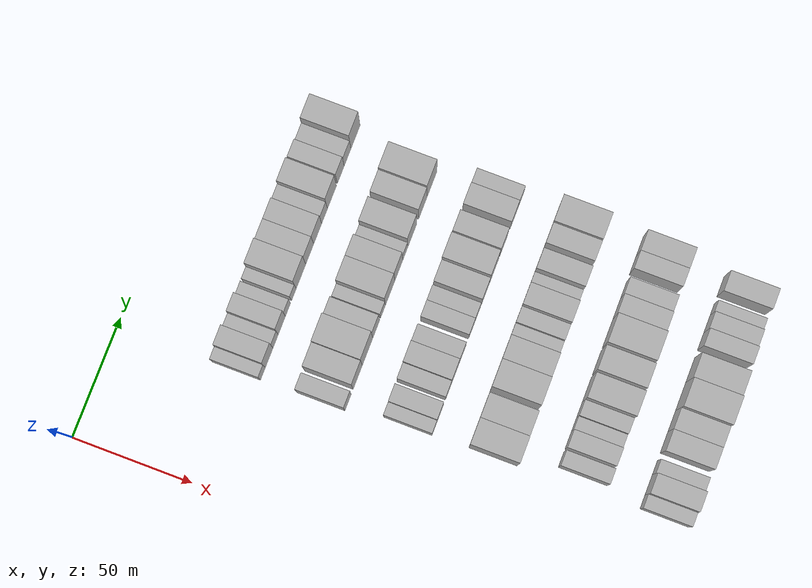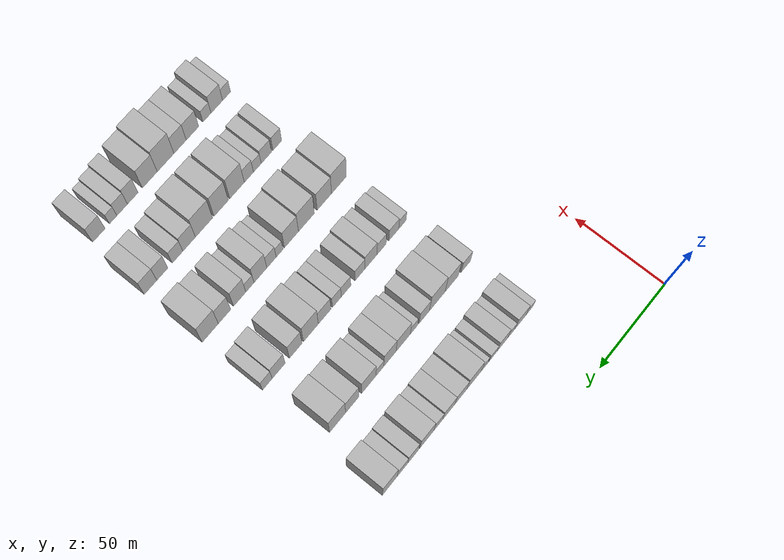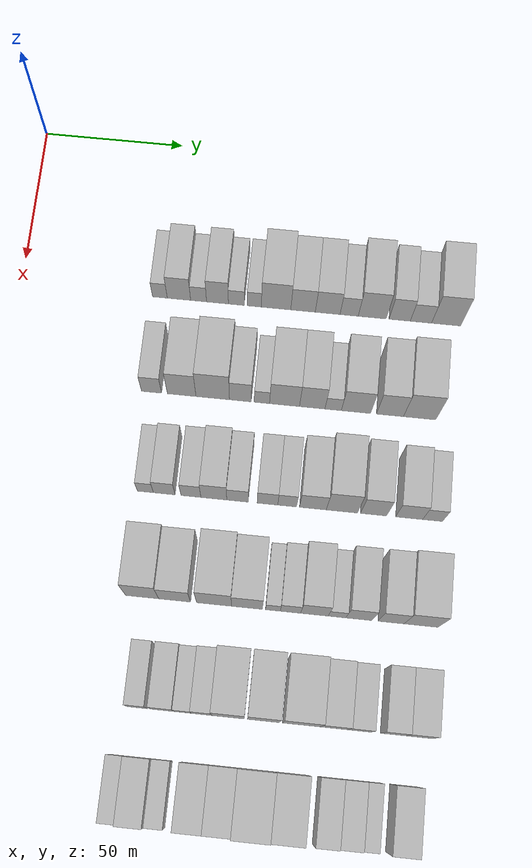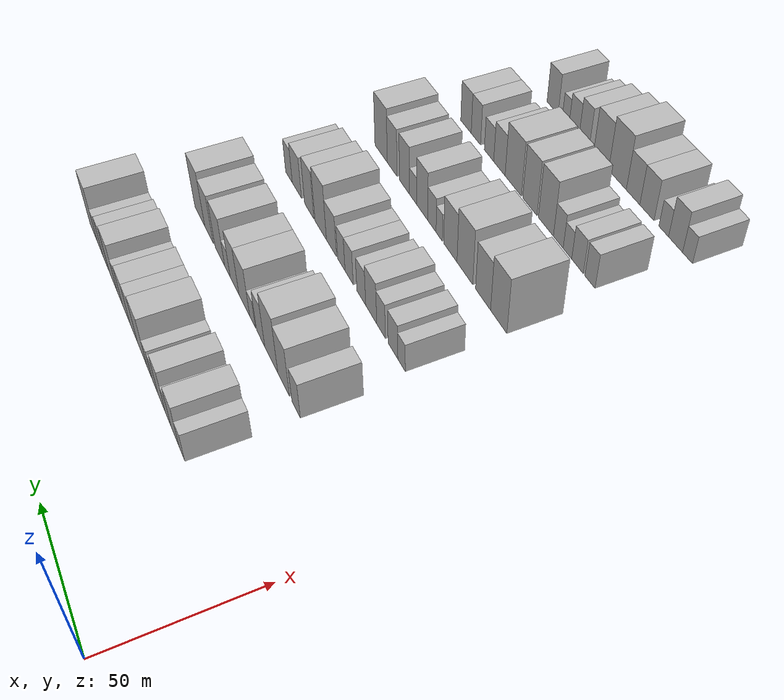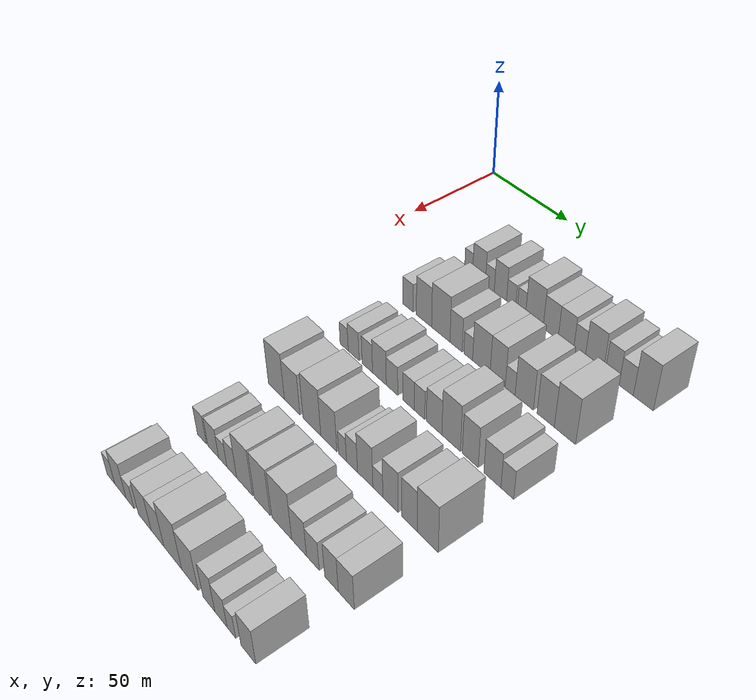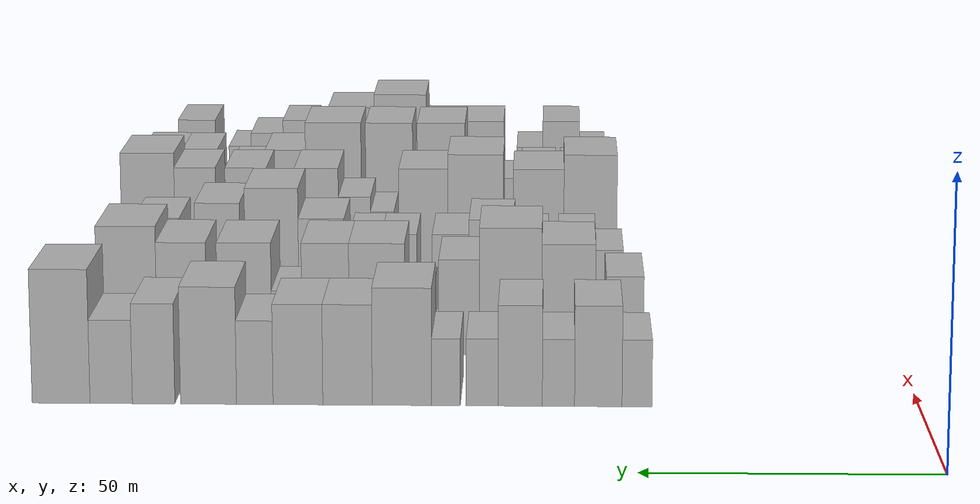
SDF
<sdf version="1.6">
 <world name="default">
  <model name="building_67">
   <static>1</static>
   <pose>50.0000 49.1198 0 0.000000 0.000000 0.000000</pose>
   <link name="link">
    <pose>0 0 6.00 0 0 0</pose>
    <collision name="collision"><geometry><box><size>20.0000 5.2100 12.0000</size></box></geometry></collision>
    <visual name="visual">
     <cast_shadows>0</cast_shadows>
     <geometry><box><size>20.0000 5.2100 12.0000</size></box></geometry>
     <material>
      <script>
       <uri>model://HANNAS_wall/materials/scripts</uri>
       <uri>model://HANNAS_wall/materials/textures</uri>
       <name>vrc/HANNAS_wall</name>
      </script>
     </material>
    </visual>
   </link>
  </model>
  <model name="building_68">
   <static>1</static>
   <pose>50.0000 55.8494 0 0.000000 0.000000 0.000000</pose>
   <link name="link">
    <pose>0 0 9.00 0 0 0</pose>
    <collision name="collision"><geometry><box><size>20.0000 8.2492 18.0000</size></box></geometry></collision>
    <visual name="visual">
     <cast_shadows>0</cast_shadows>
     <geometry><box><size>20.0000 8.2492 18.0000</size></box></geometry>
     <material>
      <script>
       <uri>model://HANNAS_wall/materials/scripts</uri>
       <uri>model://HANNAS_wall/materials/textures</uri>
       <name>vrc/HANNAS_wall</name>
      </script>
     </material>
    </visual>
   </link>
  </model>
  <model name="building_69">
   <static>1</static>
   <pose>50.0000 62.7805 0 0.000000 0.000000 0.000000</pose>
   <link name="link">
    <pose>0 0 6.00 0 0 0</pose>
    <collision name="collision"><geometry><box><size>20.0000 5.6130 12.0000</size></box></geometry></collision>
    <visual name="visual">
     <cast_shadows>0</cast_shadows>
     <geometry><box><size>20.0000 5.6130 12.0000</size></box></geometry>
     <material>
      <script>
       <uri>model://HANNAS_wall/materials/scripts</uri>
       <uri>model://HANNAS_wall/materials/textures</uri>
       <name>vrc/HANNAS_wall</name>
      </script>
     </material>
    </visual>
   </link>
  </model>
  <model name="building_70">
   <static>1</static>
   <pose>50.0000 69.4365 0 0.000000 0.000000 0.000000</pose>
   <link name="link">
    <pose>0 0 9.00 0 0 0</pose>
    <collision name="collision"><geometry><box><size>20.0000 7.6991 18.0000</size></box></geometry></collision>
    <visual name="visual">
     <cast_shadows>0</cast_shadows>
     <geometry><box><size>20.0000 7.6991 18.0000</size></box></geometry>
     <material>
      <script>
       <uri>model://HANNAS_wall/materials/scripts</uri>
       <uri>model://HANNAS_wall/materials/textures</uri>
       <name>vrc/HANNAS_wall</name>
      </script>
     </material>
    </visual>
   </link>
  </model>
  <model name="building_71">
   <static>1</static>
   <pose>50.0000 76.0715 0 0.000000 0.000000 0.000000</pose>
   <link name="link">
    <pose>0 0 6.00 0 0 0</pose>
    <collision name="collision"><geometry><box><size>20.0000 5.5709 12.0000</size></box></geometry></collision>
    <visual name="visual">
     <cast_shadows>0</cast_shadows>
     <geometry><box><size>20.0000 5.5709 12.0000</size></box></geometry>
     <material>
      <script>
       <uri>model://HANNAS_wall/materials/scripts</uri>
       <uri>model://HANNAS_wall/materials/textures</uri>
       <name>vrc/HANNAS_wall</name>
      </script>
     </material>
    </visual>
   </link>
  </model>
  <model name="building_72">
   <static>1</static>
   <pose>50.0000 82.3597 0 0.000000 0.000000 0.000000</pose>
   <link name="link">
    <pose>0 0 6.00 0 0 0</pose>
    <collision name="collision"><geometry><box><size>20.0000 5.0054 12.0000</size></box></geometry></collision>
    <visual name="visual">
     <cast_shadows>0</cast_shadows>
     <geometry><box><size>20.0000 5.0054 12.0000</size></box></geometry>
     <material>
      <script>
       <uri>model://HANNAS_wall/materials/scripts</uri>
       <uri>model://HANNAS_wall/materials/textures</uri>
       <name>vrc/HANNAS_wall</name>
      </script>
     </material>
    </visual>
   </link>
  </model>
  <model name="building_73">
   <static>1</static>
   <pose>50.0000 90.0445 0 0.000000 0.000000 0.000000</pose>
   <link name="link">
    <pose>0 0 10.50 0 0 0</pose>
    <collision name="collision"><geometry><box><size>20.0000 10.3643 21.0000</size></box></geometry></collision>
    <visual name="visual">
     <cast_shadows>0</cast_shadows>
     <geometry><box><size>20.0000 10.3643 21.0000</size></box></geometry>
     <material>
      <script>
       <uri>model://HANNAS_wall/materials/scripts</uri>
       <uri>model://HANNAS_wall/materials/textures</uri>
       <name>vrc/HANNAS_wall</name>
      </script>
     </material>
    </visual>
   </link>
  </model>
  <model name="building_74">
   <static>1</static>
   <pose>50.0000 99.5334 0 0.000000 0.000000 0.000000</pose>
   <link name="link">
    <pose>0 0 9.00 0 0 0</pose>
    <collision name="collision"><geometry><box><size>20.0000 8.6134 18.0000</size></box></geometry></collision>
    <visual name="visual">
     <cast_shadows>0</cast_shadows>
     <geometry><box><size>20.0000 8.6134 18.0000</size></box></geometry>
     <material>
      <script>
       <uri>model://HANNAS_wall/materials/scripts</uri>
       <uri>model://HANNAS_wall/materials/textures</uri>
       <name>vrc/HANNAS_wall</name>
      </script>
     </material>
    </visual>
   </link>
  </model>
  <model name="building_75">
   <static>1</static>
   <pose>50.0000 108.1881 0 0.000000 0.000000 0.000000</pose>
   <link name="link">
    <pose>0 0 9.00 0 0 0</pose>
    <collision name="collision"><geometry><box><size>20.0000 8.6960 18.0000</size></box></geometry></collision>
    <visual name="visual">
     <cast_shadows>0</cast_shadows>
     <geometry><box><size>20.0000 8.6960 18.0000</size></box></geometry>
     <material>
      <script>
       <uri>model://HANNAS_wall/materials/scripts</uri>
       <uri>model://HANNAS_wall/materials/textures</uri>
       <name>vrc/HANNAS_wall</name>
      </script>
     </material>
    </visual>
   </link>
  </model>
  <model name="building_76">
   <static>1</static>
   <pose>50.0000 115.7218 0 0.000000 0.000000 0.000000</pose>
   <link name="link">
    <pose>0 0 7.50 0 0 0</pose>
    <collision name="collision"><geometry><box><size>20.0000 6.3713 15.0000</size></box></geometry></collision>
    <visual name="visual">
     <cast_shadows>0</cast_shadows>
     <geometry><box><size>20.0000 6.3713 15.0000</size></box></geometry>
     <material>
      <script>
       <uri>model://HANNAS_wall/materials/scripts</uri>
       <uri>model://HANNAS_wall/materials/textures</uri>
       <name>vrc/HANNAS_wall</name>
      </script>
     </material>
    </visual>
   </link>
  </model>
  <model name="building_77">
   <static>1</static>
   <pose>50.0000 123.8082 0 0.000000 0.000000 0.000000</pose>
   <link name="link">
    <pose>0 0 10.50 0 0 0</pose>
    <collision name="collision"><geometry><box><size>20.0000 9.8015 21.0000</size></box></geometry></collision>
    <visual name="visual">
     <cast_shadows>0</cast_shadows>
     <geometry><box><size>20.0000 9.8015 21.0000</size></box></geometry>
     <material>
      <script>
       <uri>model://HANNAS_wall/materials/scripts</uri>
       <uri>model://HANNAS_wall/materials/textures</uri>
       <name>vrc/HANNAS_wall</name>
      </script>
     </material>
    </visual>
   </link>
  </model>
  <model name="building_78">
   <static>1</static>
   <pose>50.0000 133.4193 0 0.000000 0.000000 0.000000</pose>
   <link name="link">
    <pose>0 0 9.00 0 0 0</pose>
    <collision name="collision"><geometry><box><size>20.0000 7.4208 18.0000</size></box></geometry></collision>
    <visual name="visual">
     <cast_shadows>0</cast_shadows>
     <geometry><box><size>20.0000 7.4208 18.0000</size></box></geometry>
     <material>
      <script>
       <uri>model://HANNAS_wall/materials/scripts</uri>
       <uri>model://HANNAS_wall/materials/textures</uri>
       <name>vrc/HANNAS_wall</name>
      </script>
     </material>
    </visual>
   </link>
  </model>
  <model name="building_79">
   <static>1</static>
   <pose>50.0000 140.8421 0 0.000000 0.000000 0.000000</pose>
   <link name="link">
    <pose>0 0 7.50 0 0 0</pose>
    <collision name="collision"><geometry><box><size>20.0000 7.4248 15.0000</size></box></geometry></collision>
    <visual name="visual">
     <cast_shadows>0</cast_shadows>
     <geometry><box><size>20.0000 7.4248 15.0000</size></box></geometry>
     <material>
      <script>
       <uri>model://HANNAS_wall/materials/scripts</uri>
       <uri>model://HANNAS_wall/materials/textures</uri>
       <name>vrc/HANNAS_wall</name>
      </script>
     </material>
    </visual>
   </link>
  </model>
  <model name="building_80">
   <static>1</static>
   <pose>50.0000 149.6236 0 0.000000 0.000000 0.000000</pose>
   <link name="link">
    <pose>0 0 12.00 0 0 0</pose>
    <collision name="collision"><geometry><box><size>20.0000 10.1382 24.0000</size></box></geometry></collision>
    <visual name="visual">
     <cast_shadows>0</cast_shadows>
     <geometry><box><size>20.0000 10.1382 24.0000</size></box></geometry>
     <material>
      <script>
       <uri>model://HANNAS_wall/materials/scripts</uri>
       <uri>model://HANNAS_wall/materials/textures</uri>
       <name>vrc/HANNAS_wall</name>
      </script>
     </material>
    </visual>
   </link>
  </model>
  <model name="building_198">
   <static>1</static>
   <pose>85.0000 50.5022 0 0.000000 0.000000 0.000000</pose>
   <link name="link">
    <pose>0 0 7.50 0 0 0</pose>
    <collision name="collision"><geometry><box><size>20.0000 6.9142 15.0000</size></box></geometry></collision>
    <visual name="visual">
     <cast_shadows>0</cast_shadows>
     <geometry><box><size>20.0000 6.9142 15.0000</size></box></geometry>
     <material>
      <script>
       <uri>model://HANNAS_wall/materials/scripts</uri>
       <uri>model://HANNAS_wall/materials/textures</uri>
       <name>vrc/HANNAS_wall</name>
      </script>
     </material>
    </visual>
   </link>
  </model>
  <model name="building_199">
   <static>1</static>
   <pose>85.0000 60.8864 0 0.000000 0.000000 0.000000</pose>
   <link name="link">
    <pose>0 0 10.50 0 0 0</pose>
    <collision name="collision"><geometry><box><size>20.0000 9.8542 21.0000</size></box></geometry></collision>
    <visual name="visual">
     <cast_shadows>0</cast_shadows>
     <geometry><box><size>20.0000 9.8542 21.0000</size></box></geometry>
     <material>
      <script>
       <uri>model://HANNAS_wall/materials/scripts</uri>
       <uri>model://HANNAS_wall/materials/textures</uri>
       <name>vrc/HANNAS_wall</name>
      </script>
     </material>
    </visual>
   </link>
  </model>
  <model name="building_200">
   <static>1</static>
   <pose>85.0000 71.5769 0 0.000000 0.000000 0.000000</pose>
   <link name="link">
    <pose>0 0 12.00 0 0 0</pose>
    <collision name="collision"><geometry><box><size>20.0000 11.5269 24.0000</size></box></geometry></collision>
    <visual name="visual">
     <cast_shadows>0</cast_shadows>
     <geometry><box><size>20.0000 11.5269 24.0000</size></box></geometry>
     <material>
      <script>
       <uri>model://HANNAS_wall/materials/scripts</uri>
       <uri>model://HANNAS_wall/materials/textures</uri>
       <name>vrc/HANNAS_wall</name>
      </script>
     </material>
    </visual>
   </link>
  </model>
  <model name="building_201">
   <static>1</static>
   <pose>85.0000 81.0850 0 0.000000 0.000000 0.000000</pose>
   <link name="link">
    <pose>0 0 9.00 0 0 0</pose>
    <collision name="collision"><geometry><box><size>20.0000 7.4894 18.0000</size></box></geometry></collision>
    <visual name="visual">
     <cast_shadows>0</cast_shadows>
     <geometry><box><size>20.0000 7.4894 18.0000</size></box></geometry>
     <material>
      <script>
       <uri>model://HANNAS_wall/materials/scripts</uri>
       <uri>model://HANNAS_wall/materials/textures</uri>
       <name>vrc/HANNAS_wall</name>
      </script>
     </material>
    </visual>
   </link>
  </model>
  <model name="building_202">
   <static>1</static>
   <pose>85.0000 88.4668 0 0.000000 0.000000 0.000000</pose>
   <link name="link">
    <pose>0 0 6.00 0 0 0</pose>
    <collision name="collision"><geometry><box><size>20.0000 5.2743 12.0000</size></box></geometry></collision>
    <visual name="visual">
     <cast_shadows>0</cast_shadows>
     <geometry><box><size>20.0000 5.2743 12.0000</size></box></geometry>
     <material>
      <script>
       <uri>model://HANNAS_wall/materials/scripts</uri>
       <uri>model://HANNAS_wall/materials/textures</uri>
       <name>vrc/HANNAS_wall</name>
      </script>
     </material>
    </visual>
   </link>
  </model>
  <model name="building_203">
   <static>1</static>
   <pose>85.0000 96.2432 0 0.000000 0.000000 0.000000</pose>
   <link name="link">
    <pose>0 0 10.50 0 0 0</pose>
    <collision name="collision"><geometry><box><size>20.0000 10.2783 21.0000</size></box></geometry></collision>
    <visual name="visual">
     <cast_shadows>0</cast_shadows>
     <geometry><box><size>20.0000 10.2783 21.0000</size></box></geometry>
     <material>
      <script>
       <uri>model://HANNAS_wall/materials/scripts</uri>
       <uri>model://HANNAS_wall/materials/textures</uri>
       <name>vrc/HANNAS_wall</name>
      </script>
     </material>
    </visual>
   </link>
  </model>
  <model name="building_204">
   <static>1</static>
   <pose>85.0000 105.7461 0 0.000000 0.000000 0.000000</pose>
   <link name="link">
    <pose>0 0 10.50 0 0 0</pose>
    <collision name="collision"><geometry><box><size>20.0000 8.7275 21.0000</size></box></geometry></collision>
    <visual name="visual">
     <cast_shadows>0</cast_shadows>
     <geometry><box><size>20.0000 8.7275 21.0000</size></box></geometry>
     <material>
      <script>
       <uri>model://HANNAS_wall/materials/scripts</uri>
       <uri>model://HANNAS_wall/materials/textures</uri>
       <name>vrc/HANNAS_wall</name>
      </script>
     </material>
    </visual>
   </link>
  </model>
  <model name="building_205">
   <static>1</static>
   <pose>85.0000 112.9119 0 0.000000 0.000000 0.000000</pose>
   <link name="link">
    <pose>0 0 6.00 0 0 0</pose>
    <collision name="collision"><geometry><box><size>20.0000 5.6042 12.0000</size></box></geometry></collision>
    <visual name="visual">
     <cast_shadows>0</cast_shadows>
     <geometry><box><size>20.0000 5.6042 12.0000</size></box></geometry>
     <material>
      <script>
       <uri>model://HANNAS_wall/materials/scripts</uri>
       <uri>model://HANNAS_wall/materials/textures</uri>
       <name>vrc/HANNAS_wall</name>
      </script>
     </material>
    </visual>
   </link>
  </model>
  <model name="building_206">
   <static>1</static>
   <pose>85.0000 120.7235 0 0.000000 0.000000 0.000000</pose>
   <link name="link">
    <pose>0 0 10.50 0 0 0</pose>
    <collision name="collision"><geometry><box><size>20.0000 10.0190 21.0000</size></box></geometry></collision>
    <visual name="visual">
     <cast_shadows>0</cast_shadows>
     <geometry><box><size>20.0000 10.0190 21.0000</size></box></geometry>
     <material>
      <script>
       <uri>model://HANNAS_wall/materials/scripts</uri>
       <uri>model://HANNAS_wall/materials/textures</uri>
       <name>vrc/HANNAS_wall</name>
      </script>
     </material>
    </visual>
   </link>
  </model>
  <model name="building_207">
   <static>1</static>
   <pose>85.0000 132.3406 0 0.000000 0.000000 0.000000</pose>
   <link name="link">
    <pose>0 0 10.50 0 0 0</pose>
    <collision name="collision"><geometry><box><size>20.0000 9.2150 21.0000</size></box></geometry></collision>
    <visual name="visual">
     <cast_shadows>0</cast_shadows>
     <geometry><box><size>20.0000 9.2150 21.0000</size></box></geometry>
     <material>
      <script>
       <uri>model://HANNAS_wall/materials/scripts</uri>
       <uri>model://HANNAS_wall/materials/textures</uri>
       <name>vrc/HANNAS_wall</name>
      </script>
     </material>
    </visual>
   </link>
  </model>
  <model name="building_208">
   <static>1</static>
   <pose>85.0000 142.4739 0 0.000000 0.000000 0.000000</pose>
   <link name="link">
    <pose>0 0 12.00 0 0 0</pose>
    <collision name="collision"><geometry><box><size>20.0000 11.0516 24.0000</size></box></geometry></collision>
    <visual name="visual">
     <cast_shadows>0</cast_shadows>
     <geometry><box><size>20.0000 11.0516 24.0000</size></box></geometry>
     <material>
      <script>
       <uri>model://HANNAS_wall/materials/scripts</uri>
       <uri>model://HANNAS_wall/materials/textures</uri>
       <name>vrc/HANNAS_wall</name>
      </script>
     </material>
    </visual>
   </link>
  </model>
  <model name="building_327">
   <static>1</static>
   <pose>120.0000 52.7888 0 0.000000 0.000000 0.000000</pose>
   <link name="link">
    <pose>0 0 6.00 0 0 0</pose>
    <collision name="collision"><geometry><box><size>20.0000 5.4136 12.0000</size></box></geometry></collision>
    <visual name="visual">
     <cast_shadows>0</cast_shadows>
     <geometry><box><size>20.0000 5.4136 12.0000</size></box></geometry>
     <material>
      <script>
       <uri>model://HANNAS_wall/materials/scripts</uri>
       <uri>model://HANNAS_wall/materials/textures</uri>
       <name>vrc/HANNAS_wall</name>
      </script>
     </material>
    </visual>
   </link>
  </model>
  <model name="building_328">
   <static>1</static>
   <pose>120.0000 59.1271 0 0.000000 0.000000 0.000000</pose>
   <link name="link">
    <pose>0 0 7.50 0 0 0</pose>
    <collision name="collision"><geometry><box><size>20.0000 7.2629 15.0000</size></box></geometry></collision>
    <visual name="visual">
     <cast_shadows>0</cast_shadows>
     <geometry><box><size>20.0000 7.2629 15.0000</size></box></geometry>
     <material>
      <script>
       <uri>model://HANNAS_wall/materials/scripts</uri>
       <uri>model://HANNAS_wall/materials/textures</uri>
       <name>vrc/HANNAS_wall</name>
      </script>
     </material>
    </visual>
   </link>
  </model>
  <model name="building_329">
   <static>1</static>
   <pose>120.0000 68.0916 0 0.000000 0.000000 0.000000</pose>
   <link name="link">
    <pose>0 0 7.50 0 0 0</pose>
    <collision name="collision"><geometry><box><size>20.0000 6.6662 15.0000</size></box></geometry></collision>
    <visual name="visual">
     <cast_shadows>0</cast_shadows>
     <geometry><box><size>20.0000 6.6662 15.0000</size></box></geometry>
     <material>
      <script>
       <uri>model://HANNAS_wall/materials/scripts</uri>
       <uri>model://HANNAS_wall/materials/textures</uri>
       <name>vrc/HANNAS_wall</name>
      </script>
     </material>
    </visual>
   </link>
  </model>
  <model name="building_330">
   <static>1</static>
   <pose>120.0000 75.7740 0 0.000000 0.000000 0.000000</pose>
   <link name="link">
    <pose>0 0 9.00 0 0 0</pose>
    <collision name="collision"><geometry><box><size>20.0000 8.6986 18.0000</size></box></geometry></collision>
    <visual name="visual">
     <cast_shadows>0</cast_shadows>
     <geometry><box><size>20.0000 8.6986 18.0000</size></box></geometry>
     <material>
      <script>
       <uri>model://HANNAS_wall/materials/scripts</uri>
       <uri>model://HANNAS_wall/materials/textures</uri>
       <name>vrc/HANNAS_wall</name>
      </script>
     </material>
    </visual>
   </link>
  </model>
  <model name="building_331">
   <static>1</static>
   <pose>120.0000 83.7094 0 0.000000 0.000000 0.000000</pose>
   <link name="link">
    <pose>0 0 7.50 0 0 0</pose>
    <collision name="collision"><geometry><box><size>20.0000 7.1723 15.0000</size></box></geometry></collision>
    <visual name="visual">
     <cast_shadows>0</cast_shadows>
     <geometry><box><size>20.0000 7.1723 15.0000</size></box></geometry>
     <material>
      <script>
       <uri>model://HANNAS_wall/materials/scripts</uri>
       <uri>model://HANNAS_wall/materials/textures</uri>
       <name>vrc/HANNAS_wall</name>
      </script>
     </material>
    </visual>
   </link>
  </model>
  <model name="building_332">
   <static>1</static>
   <pose>120.0000 93.7433 0 0.000000 0.000000 0.000000</pose>
   <link name="link">
    <pose>0 0 7.50 0 0 0</pose>
    <collision name="collision"><geometry><box><size>20.0000 6.8956 15.0000</size></box></geometry></collision>
    <visual name="visual">
     <cast_shadows>0</cast_shadows>
     <geometry><box><size>20.0000 6.8956 15.0000</size></box></geometry>
     <material>
      <script>
       <uri>model://HANNAS_wall/materials/scripts</uri>
       <uri>model://HANNAS_wall/materials/textures</uri>
       <name>vrc/HANNAS_wall</name>
      </script>
     </material>
    </visual>
   </link>
  </model>
  <model name="building_333">
   <static>1</static>
   <pose>120.0000 100.3325 0 0.000000 0.000000 0.000000</pose>
   <link name="link">
    <pose>0 0 7.50 0 0 0</pose>
    <collision name="collision"><geometry><box><size>20.0000 6.2827 15.0000</size></box></geometry></collision>
    <visual name="visual">
     <cast_shadows>0</cast_shadows>
     <geometry><box><size>20.0000 6.2827 15.0000</size></box></geometry>
     <material>
      <script>
       <uri>model://HANNAS_wall/materials/scripts</uri>
       <uri>model://HANNAS_wall/materials/textures</uri>
       <name>vrc/HANNAS_wall</name>
      </script>
     </material>
    </visual>
   </link>
  </model>
  <model name="building_334">
   <static>1</static>
   <pose>120.0000 108.9419 0 0.000000 0.000000 0.000000</pose>
   <link name="link">
    <pose>0 0 9.00 0 0 0</pose>
    <collision name="collision"><geometry><box><size>20.0000 8.9361 18.0000</size></box></geometry></collision>
    <visual name="visual">
     <cast_shadows>0</cast_shadows>
     <geometry><box><size>20.0000 8.9361 18.0000</size></box></geometry>
     <material>
      <script>
       <uri>model://HANNAS_wall/materials/scripts</uri>
       <uri>model://HANNAS_wall/materials/textures</uri>
       <name>vrc/HANNAS_wall</name>
      </script>
     </material>
    </visual>
   </link>
  </model>
  <model name="building_335">
   <static>1</static>
   <pose>120.0000 118.6176 0 0.000000 0.000000 0.000000</pose>
   <link name="link">
    <pose>0 0 12.00 0 0 0</pose>
    <collision name="collision"><geometry><box><size>20.0000 10.4153 24.0000</size></box></geometry></collision>
    <visual name="visual">
     <cast_shadows>0</cast_shadows>
     <geometry><box><size>20.0000 10.4153 24.0000</size></box></geometry>
     <material>
      <script>
       <uri>model://HANNAS_wall/materials/scripts</uri>
       <uri>model://HANNAS_wall/materials/textures</uri>
       <name>vrc/HANNAS_wall</name>
      </script>
     </material>
    </visual>
   </link>
  </model>
  <model name="building_336">
   <static>1</static>
   <pose>120.0000 129.1924 0 0.000000 0.000000 0.000000</pose>
   <link name="link">
    <pose>0 0 10.50 0 0 0</pose>
    <collision name="collision"><geometry><box><size>20.0000 8.7344 21.0000</size></box></geometry></collision>
    <visual name="visual">
     <cast_shadows>0</cast_shadows>
     <geometry><box><size>20.0000 8.7344 21.0000</size></box></geometry>
     <material>
      <script>
       <uri>model://HANNAS_wall/materials/scripts</uri>
       <uri>model://HANNAS_wall/materials/textures</uri>
       <name>vrc/HANNAS_wall</name>
      </script>
     </material>
    </visual>
   </link>
  </model>
  <model name="building_337">
   <static>1</static>
   <pose>120.0000 141.0520 0 0.000000 0.000000 0.000000</pose>
   <link name="link">
    <pose>0 0 9.00 0 0 0</pose>
    <collision name="collision"><geometry><box><size>20.0000 8.9848 18.0000</size></box></geometry></collision>
    <visual name="visual">
     <cast_shadows>0</cast_shadows>
     <geometry><box><size>20.0000 8.9848 18.0000</size></box></geometry>
     <material>
      <script>
       <uri>model://HANNAS_wall/materials/scripts</uri>
       <uri>model://HANNAS_wall/materials/textures</uri>
       <name>vrc/HANNAS_wall</name>
      </script>
     </material>
    </visual>
   </link>
  </model>
  <model name="building_338">
   <static>1</static>
   <pose>120.0000 148.8465 0 0.000000 0.000000 0.000000</pose>
   <link name="link">
    <pose>0 0 7.50 0 0 0</pose>
    <collision name="collision"><geometry><box><size>20.0000 6.6041 15.0000</size></box></geometry></collision>
    <visual name="visual">
     <cast_shadows>0</cast_shadows>
     <geometry><box><size>20.0000 6.6041 15.0000</size></box></geometry>
     <material>
      <script>
       <uri>model://HANNAS_wall/materials/scripts</uri>
       <uri>model://HANNAS_wall/materials/textures</uri>
       <name>vrc/HANNAS_wall</name>
      </script>
     </material>
    </visual>
   </link>
  </model>
  <model name="building_452">
   <static>1</static>
   <pose>155.0000 56.1237 0 0.000000 0.000000 0.000000</pose>
   <link name="link">
    <pose>0 0 12.00 0 0 0</pose>
    <collision name="collision"><geometry><box><size>20.0000 10.8956 24.0000</size></box></geometry></collision>
    <visual name="visual">
     <cast_shadows>0</cast_shadows>
     <geometry><box><size>20.0000 10.8956 24.0000</size></box></geometry>
     <material>
      <script>
       <uri>model://HANNAS_wall/materials/scripts</uri>
       <uri>model://HANNAS_wall/materials/textures</uri>
       <name>vrc/HANNAS_wall</name>
      </script>
     </material>
    </visual>
   </link>
  </model>
  <model name="building_453">
   <static>1</static>
   <pose>155.0000 66.7776 0 0.000000 0.000000 0.000000</pose>
   <link name="link">
    <pose>0 0 10.50 0 0 0</pose>
    <collision name="collision"><geometry><box><size>20.0000 10.4123 21.0000</size></box></geometry></collision>
    <visual name="visual">
     <cast_shadows>0</cast_shadows>
     <geometry><box><size>20.0000 10.4123 21.0000</size></box></geometry>
     <material>
      <script>
       <uri>model://HANNAS_wall/materials/scripts</uri>
       <uri>model://HANNAS_wall/materials/textures</uri>
       <name>vrc/HANNAS_wall</name>
      </script>
     </material>
    </visual>
   </link>
  </model>
  <model name="building_454">
   <static>1</static>
   <pose>155.0000 79.6913 0 0.000000 0.000000 0.000000</pose>
   <link name="link">
    <pose>0 0 12.00 0 0 0</pose>
    <collision name="collision"><geometry><box><size>20.0000 11.4151 24.0000</size></box></geometry></collision>
    <visual name="visual">
     <cast_shadows>0</cast_shadows>
     <geometry><box><size>20.0000 11.4151 24.0000</size></box></geometry>
     <material>
      <script>
       <uri>model://HANNAS_wall/materials/scripts</uri>
       <uri>model://HANNAS_wall/materials/textures</uri>
       <name>vrc/HANNAS_wall</name>
      </script>
     </material>
    </visual>
   </link>
  </model>
  <model name="building_455">
   <static>1</static>
   <pose>155.0000 90.4249 0 0.000000 0.000000 0.000000</pose>
   <link name="link">
    <pose>0 0 10.50 0 0 0</pose>
    <collision name="collision"><geometry><box><size>20.0000 10.0520 21.0000</size></box></geometry></collision>
    <visual name="visual">
     <cast_shadows>0</cast_shadows>
     <geometry><box><size>20.0000 10.0520 21.0000</size></box></geometry>
     <material>
      <script>
       <uri>model://HANNAS_wall/materials/scripts</uri>
       <uri>model://HANNAS_wall/materials/textures</uri>
       <name>vrc/HANNAS_wall</name>
      </script>
     </material>
    </visual>
   </link>
  </model>
  <model name="building_456">
   <static>1</static>
   <pose>155.0000 98.8574 0 0.000000 0.000000 0.000000</pose>
   <link name="link">
    <pose>0 0 6.00 0 0 0</pose>
    <collision name="collision"><geometry><box><size>20.0000 4.8131 12.0000</size></box></geometry></collision>
    <visual name="visual">
     <cast_shadows>0</cast_shadows>
     <geometry><box><size>20.0000 4.8131 12.0000</size></box></geometry>
     <material>
      <script>
       <uri>model://HANNAS_wall/materials/scripts</uri>
       <uri>model://HANNAS_wall/materials/textures</uri>
       <name>vrc/HANNAS_wall</name>
      </script>
     </material>
    </visual>
   </link>
  </model>
  <model name="building_457">
   <static>1</static>
   <pose>155.0000 104.5736 0 0.000000 0.000000 0.000000</pose>
   <link name="link">
    <pose>0 0 7.50 0 0 0</pose>
    <collision name="collision"><geometry><box><size>20.0000 6.6192 15.0000</size></box></geometry></collision>
    <visual name="visual">
     <cast_shadows>0</cast_shadows>
     <geometry><box><size>20.0000 6.6192 15.0000</size></box></geometry>
     <material>
      <script>
       <uri>model://HANNAS_wall/materials/scripts</uri>
       <uri>model://HANNAS_wall/materials/textures</uri>
       <name>vrc/HANNAS_wall</name>
      </script>
     </material>
    </visual>
   </link>
  </model>
  <model name="building_458">
   <static>1</static>
   <pose>155.0000 112.3823 0 0.000000 0.000000 0.000000</pose>
   <link name="link">
    <pose>0 0 10.50 0 0 0</pose>
    <collision name="collision"><geometry><box><size>20.0000 8.9981 21.0000</size></box></geometry></collision>
    <visual name="visual">
     <cast_shadows>0</cast_shadows>
     <geometry><box><size>20.0000 8.9981 21.0000</size></box></geometry>
     <material>
      <script>
       <uri>model://HANNAS_wall/materials/scripts</uri>
       <uri>model://HANNAS_wall/materials/textures</uri>
       <name>vrc/HANNAS_wall</name>
      </script>
     </material>
    </visual>
   </link>
  </model>
  <model name="building_459">
   <static>1</static>
   <pose>155.0000 119.7401 0 0.000000 0.000000 0.000000</pose>
   <link name="link">
    <pose>0 0 6.00 0 0 0</pose>
    <collision name="collision"><geometry><box><size>20.0000 5.7175 12.0000</size></box></geometry></collision>
    <visual name="visual">
     <cast_shadows>0</cast_shadows>
     <geometry><box><size>20.0000 5.7175 12.0000</size></box></geometry>
     <material>
      <script>
       <uri>model://HANNAS_wall/materials/scripts</uri>
       <uri>model://HANNAS_wall/materials/textures</uri>
       <name>vrc/HANNAS_wall</name>
      </script>
     </material>
    </visual>
   </link>
  </model>
  <model name="building_460">
   <static>1</static>
   <pose>155.0000 126.8466 0 0.000000 0.000000 0.000000</pose>
   <link name="link">
    <pose>0 0 10.50 0 0 0</pose>
    <collision name="collision"><geometry><box><size>20.0000 8.4956 21.0000</size></box></geometry></collision>
    <visual name="visual">
     <cast_shadows>0</cast_shadows>
     <geometry><box><size>20.0000 8.4956 21.0000</size></box></geometry>
     <material>
      <script>
       <uri>model://HANNAS_wall/materials/scripts</uri>
       <uri>model://HANNAS_wall/materials/textures</uri>
       <name>vrc/HANNAS_wall</name>
      </script>
     </material>
    </visual>
   </link>
  </model>
  <model name="building_461">
   <static>1</static>
   <pose>155.0000 137.3286 0 0.000000 0.000000 0.000000</pose>
   <link name="link">
    <pose>0 0 10.50 0 0 0</pose>
    <collision name="collision"><geometry><box><size>20.0000 8.4682 21.0000</size></box></geometry></collision>
    <visual name="visual">
     <cast_shadows>0</cast_shadows>
     <geometry><box><size>20.0000 8.4682 21.0000</size></box></geometry>
     <material>
      <script>
       <uri>model://HANNAS_wall/materials/scripts</uri>
       <uri>model://HANNAS_wall/materials/textures</uri>
       <name>vrc/HANNAS_wall</name>
      </script>
     </material>
    </visual>
   </link>
  </model>
  <model name="building_462">
   <static>1</static>
   <pose>155.0000 147.0739 0 0.000000 0.000000 0.000000</pose>
   <link name="link">
    <pose>0 0 12.00 0 0 0</pose>
    <collision name="collision"><geometry><box><size>20.0000 11.0223 24.0000</size></box></geometry></collision>
    <visual name="visual">
     <cast_shadows>0</cast_shadows>
     <geometry><box><size>20.0000 11.0223 24.0000</size></box></geometry>
     <material>
      <script>
       <uri>model://HANNAS_wall/materials/scripts</uri>
       <uri>model://HANNAS_wall/materials/textures</uri>
       <name>vrc/HANNAS_wall</name>
      </script>
     </material>
    </visual>
   </link>
  </model>
  <model name="building_581">
   <static>1</static>
   <pose>190.0000 59.0482 0 0.000000 0.000000 0.000000</pose>
   <link name="link">
    <pose>0 0 7.50 0 0 0</pose>
    <collision name="collision"><geometry><box><size>20.0000 6.3664 15.0000</size></box></geometry></collision>
    <visual name="visual">
     <cast_shadows>0</cast_shadows>
     <geometry><box><size>20.0000 6.3664 15.0000</size></box></geometry>
     <material>
      <script>
       <uri>model://HANNAS_wall/materials/scripts</uri>
       <uri>model://HANNAS_wall/materials/textures</uri>
       <name>vrc/HANNAS_wall</name>
      </script>
     </material>
    </visual>
   </link>
  </model>
  <model name="building_582">
   <static>1</static>
   <pose>190.0000 66.9518 0 0.000000 0.000000 0.000000</pose>
   <link name="link">
    <pose>0 0 7.50 0 0 0</pose>
    <collision name="collision"><geometry><box><size>20.0000 7.4409 15.0000</size></box></geometry></collision>
    <visual name="visual">
     <cast_shadows>0</cast_shadows>
     <geometry><box><size>20.0000 7.4409 15.0000</size></box></geometry>
     <material>
      <script>
       <uri>model://HANNAS_wall/materials/scripts</uri>
       <uri>model://HANNAS_wall/materials/textures</uri>
       <name>vrc/HANNAS_wall</name>
      </script>
     </material>
    </visual>
   </link>
  </model>
  <model name="building_583">
   <static>1</static>
   <pose>190.0000 73.4623 0 0.000000 0.000000 0.000000</pose>
   <link name="link">
    <pose>0 0 6.00 0 0 0</pose>
    <collision name="collision"><geometry><box><size>20.0000 5.5800 12.0000</size></box></geometry></collision>
    <visual name="visual">
     <cast_shadows>0</cast_shadows>
     <geometry><box><size>20.0000 5.5800 12.0000</size></box></geometry>
     <material>
      <script>
       <uri>model://HANNAS_wall/materials/scripts</uri>
       <uri>model://HANNAS_wall/materials/textures</uri>
       <name>vrc/HANNAS_wall</name>
      </script>
     </material>
    </visual>
   </link>
  </model>
  <model name="building_584">
   <static>1</static>
   <pose>190.0000 79.5157 0 0.000000 0.000000 0.000000</pose>
   <link name="link">
    <pose>0 0 7.50 0 0 0</pose>
    <collision name="collision"><geometry><box><size>20.0000 6.5269 15.0000</size></box></geometry></collision>
    <visual name="visual">
     <cast_shadows>0</cast_shadows>
     <geometry><box><size>20.0000 6.5269 15.0000</size></box></geometry>
     <material>
      <script>
       <uri>model://HANNAS_wall/materials/scripts</uri>
       <uri>model://HANNAS_wall/materials/textures</uri>
       <name>vrc/HANNAS_wall</name>
      </script>
     </material>
    </visual>
   </link>
  </model>
  <model name="building_585">
   <static>1</static>
   <pose>190.0000 87.9472 0 0.000000 0.000000 0.000000</pose>
   <link name="link">
    <pose>0 0 12.00 0 0 0</pose>
    <collision name="collision"><geometry><box><size>20.0000 10.3360 24.0000</size></box></geometry></collision>
    <visual name="visual">
     <cast_shadows>0</cast_shadows>
     <geometry><box><size>20.0000 10.3360 24.0000</size></box></geometry>
     <material>
      <script>
       <uri>model://HANNAS_wall/materials/scripts</uri>
       <uri>model://HANNAS_wall/materials/textures</uri>
       <name>vrc/HANNAS_wall</name>
      </script>
     </material>
    </visual>
   </link>
  </model>
  <model name="building_586">
   <static>1</static>
   <pose>190.0000 99.1745 0 0.000000 0.000000 0.000000</pose>
   <link name="link">
    <pose>0 0 12.00 0 0 0</pose>
    <collision name="collision"><geometry><box><size>20.0000 10.1185 24.0000</size></box></geometry></collision>
    <visual name="visual">
     <cast_shadows>0</cast_shadows>
     <geometry><box><size>20.0000 10.1185 24.0000</size></box></geometry>
     <material>
      <script>
       <uri>model://HANNAS_wall/materials/scripts</uri>
       <uri>model://HANNAS_wall/materials/textures</uri>
       <name>vrc/HANNAS_wall</name>
      </script>
     </material>
    </visual>
   </link>
  </model>
  <model name="building_587">
   <static>1</static>
   <pose>190.0000 111.2334 0 0.000000 0.000000 0.000000</pose>
   <link name="link">
    <pose>0 0 12.00 0 0 0</pose>
    <collision name="collision"><geometry><box><size>20.0000 11.9994 24.0000</size></box></geometry></collision>
    <visual name="visual">
     <cast_shadows>0</cast_shadows>
     <geometry><box><size>20.0000 11.9994 24.0000</size></box></geometry>
     <material>
      <script>
       <uri>model://HANNAS_wall/materials/scripts</uri>
       <uri>model://HANNAS_wall/materials/textures</uri>
       <name>vrc/HANNAS_wall</name>
      </script>
     </material>
    </visual>
   </link>
  </model>
  <model name="building_588">
   <static>1</static>
   <pose>190.0000 121.5880 0 0.000000 0.000000 0.000000</pose>
   <link name="link">
    <pose>0 0 9.00 0 0 0</pose>
    <collision name="collision"><geometry><box><size>20.0000 8.7098 18.0000</size></box></geometry></collision>
    <visual name="visual">
     <cast_shadows>0</cast_shadows>
     <geometry><box><size>20.0000 8.7098 18.0000</size></box></geometry>
     <material>
      <script>
       <uri>model://HANNAS_wall/materials/scripts</uri>
       <uri>model://HANNAS_wall/materials/textures</uri>
       <name>vrc/HANNAS_wall</name>
      </script>
     </material>
    </visual>
   </link>
  </model>
  <model name="building_589">
   <static>1</static>
   <pose>190.0000 129.5949 0 0.000000 0.000000 0.000000</pose>
   <link name="link">
    <pose>0 0 7.50 0 0 0</pose>
    <collision name="collision"><geometry><box><size>20.0000 7.3039 15.0000</size></box></geometry></collision>
    <visual name="visual">
     <cast_shadows>0</cast_shadows>
     <geometry><box><size>20.0000 7.3039 15.0000</size></box></geometry>
     <material>
      <script>
       <uri>model://HANNAS_wall/materials/scripts</uri>
       <uri>model://HANNAS_wall/materials/textures</uri>
       <name>vrc/HANNAS_wall</name>
      </script>
     </material>
    </visual>
   </link>
  </model>
  <model name="building_590">
   <static>1</static>
   <pose>190.0000 140.0205 0 0.000000 0.000000 0.000000</pose>
   <link name="link">
    <pose>0 0 9.00 0 0 0</pose>
    <collision name="collision"><geometry><box><size>20.0000 7.5473 18.0000</size></box></geometry></collision>
    <visual name="visual">
     <cast_shadows>0</cast_shadows>
     <geometry><box><size>20.0000 7.5473 18.0000</size></box></geometry>
     <material>
      <script>
       <uri>model://HANNAS_wall/materials/scripts</uri>
       <uri>model://HANNAS_wall/materials/textures</uri>
       <name>vrc/HANNAS_wall</name>
      </script>
     </material>
    </visual>
   </link>
  </model>
  <model name="building_591">
   <static>1</static>
   <pose>190.0000 148.0875 0 0.000000 0.000000 0.000000</pose>
   <link name="link">
    <pose>0 0 9.00 0 0 0</pose>
    <collision name="collision"><geometry><box><size>20.0000 8.5868 18.0000</size></box></geometry></collision>
    <visual name="visual">
     <cast_shadows>0</cast_shadows>
     <geometry><box><size>20.0000 8.5868 18.0000</size></box></geometry>
     <material>
      <script>
       <uri>model://HANNAS_wall/materials/scripts</uri>
       <uri>model://HANNAS_wall/materials/textures</uri>
       <name>vrc/HANNAS_wall</name>
      </script>
     </material>
    </visual>
   </link>
  </model>
  <model name="building_705">
   <static>1</static>
   <pose>225.0000 54.9165 0 0.000000 0.000000 0.000000</pose>
   <link name="link">
    <pose>0 0 6.00 0 0 0</pose>
    <collision name="collision"><geometry><box><size>20.0000 5.7806 12.0000</size></box></geometry></collision>
    <visual name="visual">
     <cast_shadows>0</cast_shadows>
     <geometry><box><size>20.0000 5.7806 12.0000</size></box></geometry>
     <material>
      <script>
       <uri>model://HANNAS_wall/materials/scripts</uri>
       <uri>model://HANNAS_wall/materials/textures</uri>
       <name>vrc/HANNAS_wall</name>
      </script>
     </material>
    </visual>
   </link>
  </model>
  <model name="building_706">
   <static>1</static>
   <pose>225.0000 61.9638 0 0.000000 0.000000 0.000000</pose>
   <link name="link">
    <pose>0 0 9.00 0 0 0</pose>
    <collision name="collision"><geometry><box><size>20.0000 8.3140 18.0000</size></box></geometry></collision>
    <visual name="visual">
     <cast_shadows>0</cast_shadows>
     <geometry><box><size>20.0000 8.3140 18.0000</size></box></geometry>
     <material>
      <script>
       <uri>model://HANNAS_wall/materials/scripts</uri>
       <uri>model://HANNAS_wall/materials/textures</uri>
       <name>vrc/HANNAS_wall</name>
      </script>
     </material>
    </visual>
   </link>
  </model>
  <model name="building_707">
   <static>1</static>
   <pose>225.0000 69.0371 0 0.000000 0.000000 0.000000</pose>
   <link name="link">
    <pose>0 0 6.00 0 0 0</pose>
    <collision name="collision"><geometry><box><size>20.0000 5.8327 12.0000</size></box></geometry></collision>
    <visual name="visual">
     <cast_shadows>0</cast_shadows>
     <geometry><box><size>20.0000 5.8327 12.0000</size></box></geometry>
     <material>
      <script>
       <uri>model://HANNAS_wall/materials/scripts</uri>
       <uri>model://HANNAS_wall/materials/textures</uri>
       <name>vrc/HANNAS_wall</name>
      </script>
     </material>
    </visual>
   </link>
  </model>
  <model name="building_708">
   <static>1</static>
   <pose>225.0000 79.4008 0 0.000000 0.000000 0.000000</pose>
   <link name="link">
    <pose>0 0 9.00 0 0 0</pose>
    <collision name="collision"><geometry><box><size>20.0000 8.8947 18.0000</size></box></geometry></collision>
    <visual name="visual">
     <cast_shadows>0</cast_shadows>
     <geometry><box><size>20.0000 8.8947 18.0000</size></box></geometry>
     <material>
      <script>
       <uri>model://HANNAS_wall/materials/scripts</uri>
       <uri>model://HANNAS_wall/materials/textures</uri>
       <name>vrc/HANNAS_wall</name>
      </script>
     </material>
    </visual>
   </link>
  </model>
  <model name="building_709">
   <static>1</static>
   <pose>225.0000 88.1908 0 0.000000 0.000000 0.000000</pose>
   <link name="link">
    <pose>0 0 9.00 0 0 0</pose>
    <collision name="collision"><geometry><box><size>20.0000 8.6853 18.0000</size></box></geometry></collision>
    <visual name="visual">
     <cast_shadows>0</cast_shadows>
     <geometry><box><size>20.0000 8.6853 18.0000</size></box></geometry>
     <material>
      <script>
       <uri>model://HANNAS_wall/materials/scripts</uri>
       <uri>model://HANNAS_wall/materials/textures</uri>
       <name>vrc/HANNAS_wall</name>
      </script>
     </material>
    </visual>
   </link>
  </model>
  <model name="building_710">
   <static>1</static>
   <pose>225.0000 98.4110 0 0.000000 0.000000 0.000000</pose>
   <link name="link">
    <pose>0 0 12.00 0 0 0</pose>
    <collision name="collision"><geometry><box><size>20.0000 11.7552 24.0000</size></box></geometry></collision>
    <visual name="visual">
     <cast_shadows>0</cast_shadows>
     <geometry><box><size>20.0000 11.7552 24.0000</size></box></geometry>
     <material>
      <script>
       <uri>model://HANNAS_wall/materials/scripts</uri>
       <uri>model://HANNAS_wall/materials/textures</uri>
       <name>vrc/HANNAS_wall</name>
      </script>
     </material>
    </visual>
   </link>
  </model>
  <model name="building_711">
   <static>1</static>
   <pose>225.0000 109.4766 0 0.000000 0.000000 0.000000</pose>
   <link name="link">
    <pose>0 0 10.50 0 0 0</pose>
    <collision name="collision"><geometry><box><size>20.0000 10.3760 21.0000</size></box></geometry></collision>
    <visual name="visual">
     <cast_shadows>0</cast_shadows>
     <geometry><box><size>20.0000 10.3760 21.0000</size></box></geometry>
     <material>
      <script>
       <uri>model://HANNAS_wall/materials/scripts</uri>
       <uri>model://HANNAS_wall/materials/textures</uri>
       <name>vrc/HANNAS_wall</name>
      </script>
     </material>
    </visual>
   </link>
  </model>
  <model name="building_712">
   <static>1</static>
   <pose>225.0000 121.3076 0 0.000000 0.000000 0.000000</pose>
   <link name="link">
    <pose>0 0 9.00 0 0 0</pose>
    <collision name="collision"><geometry><box><size>20.0000 7.2858 18.0000</size></box></geometry></collision>
    <visual name="visual">
     <cast_shadows>0</cast_shadows>
     <geometry><box><size>20.0000 7.2858 18.0000</size></box></geometry>
     <material>
      <script>
       <uri>model://HANNAS_wall/materials/scripts</uri>
       <uri>model://HANNAS_wall/materials/textures</uri>
       <name>vrc/HANNAS_wall</name>
      </script>
     </material>
    </visual>
   </link>
  </model>
  <model name="building_713">
   <static>1</static>
   <pose>225.0000 128.5979 0 0.000000 0.000000 0.000000</pose>
   <link name="link">
    <pose>0 0 7.50 0 0 0</pose>
    <collision name="collision"><geometry><box><size>20.0000 7.2949 15.0000</size></box></geometry></collision>
    <visual name="visual">
     <cast_shadows>0</cast_shadows>
     <geometry><box><size>20.0000 7.2949 15.0000</size></box></geometry>
     <material>
      <script>
       <uri>model://HANNAS_wall/materials/scripts</uri>
       <uri>model://HANNAS_wall/materials/textures</uri>
       <name>vrc/HANNAS_wall</name>
      </script>
     </material>
    </visual>
   </link>
  </model>
  <model name="building_714">
   <static>1</static>
   <pose>225.0000 134.7514 0 0.000000 0.000000 0.000000</pose>
   <link name="link">
    <pose>0 0 6.00 0 0 0</pose>
    <collision name="collision"><geometry><box><size>20.0000 5.0121 12.0000</size></box></geometry></collision>
    <visual name="visual">
     <cast_shadows>0</cast_shadows>
     <geometry><box><size>20.0000 5.0121 12.0000</size></box></geometry>
     <material>
      <script>
       <uri>model://HANNAS_wall/materials/scripts</uri>
       <uri>model://HANNAS_wall/materials/textures</uri>
       <name>vrc/HANNAS_wall</name>
      </script>
     </material>
    </visual>
   </link>
  </model>
  <model name="building_715">
   <static>1</static>
   <pose>225.0000 144.4740 0 0.000000 0.000000 0.000000</pose>
   <link name="link">
    <pose>0 0 9.00 0 0 0</pose>
    <collision name="collision"><geometry><box><size>20.0000 8.4331 18.0000</size></box></geometry></collision>
    <visual name="visual">
     <cast_shadows>0</cast_shadows>
     <geometry><box><size>20.0000 8.4331 18.0000</size></box></geometry>
     <material>
      <script>
       <uri>model://HANNAS_wall/materials/scripts</uri>
       <uri>model://HANNAS_wall/materials/textures</uri>
       <name>vrc/HANNAS_wall</name>
      </script>
     </material>
    </visual>
   </link>
  </model>
 </world>
</sdf>
